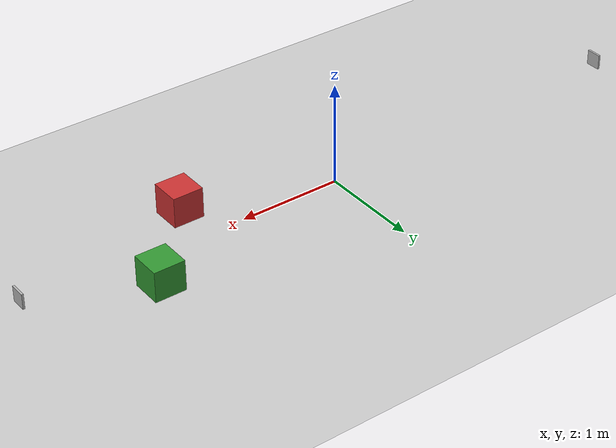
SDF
<?xml version="1.0"?>
<sdf version="1.6">
  <world name="default">

    <include><uri>model://ground_plane</uri></include>
    <include><uri>model://sun</uri></include>

    <!-- right (−y): the car avoids to the left -->
    <model name="obstacle_1">
      <static>true</static>
      <pose>1.4 -0.40 0.15 0 0 0</pose>
      <link name="link">
        <collision name="c"><geometry><box><size>0.3 0.3 0.3</size></box></geometry></collision>
        <visual name="v">
          <geometry><box><size>0.3 0.3 0.3</size></box></geometry>
          <material><ambient>0.8 0.2 0.2 1</ambient><diffuse>0.8 0.2 0.2 1</diffuse></material>
        </visual>
      </link>
    </model>

    <!-- left (+y): the car avoids to the right and returns to the center line -->
    <model name="obstacle_2">
      <static>true</static>
      <pose>2.1 0.40 0.15 0 0 0</pose>
      <link name="link">
        <collision name="c"><geometry><box><size>0.3 0.3 0.3</size></box></geometry></collision>
        <visual name="v">
          <geometry><box><size>0.3 0.3 0.3</size></box></geometry>
          <material><ambient>0.2 0.6 0.2 1</ambient><diffuse>0.2 0.6 0.2 1</diffuse></material>
        </visual>
      </link>
    </model>

    <!-- ── front marker (+X, default yaw=0 → its -X face toward the car) ──────────── -->
    <include>
      <name>aruco_front</name>
      <uri>model://aruco_marker</uri>
      <pose>3.2 0 0.16 0 0 0</pose>
    </include>

    <!-- ── rear marker (-X, yaw=180° → its +X face toward the car after the U-turn) ──── -->
    <include>
      <name>aruco_rear</name>
      <uri>model://aruco_marker</uri>
      <pose>-3.2 0 0.16 0 0 3.14159</pose>
    </include>

  </world>
</sdf>

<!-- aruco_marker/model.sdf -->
<!-- ArUco id=1 texture on a thin panel. The marker is visible on the -X face the camera sees.
     Marker real size 0.15m (matches aruco_detector.MARKER_SIZE_M -> distance estimation is correct). -->
<sdf version="1.6">
  <model name="aruco_marker">
    <static>true</static>
    <link name="link">
      <visual name="marker">
        <geometry>
          <box><size>0.02 0.15 0.15</size></box>
        </geometry>
        <material>
          <script>
            <uri>model://aruco_marker/materials/scripts</uri>
            <uri>model://aruco_marker/materials/textures</uri>
            <name>ArucoMarker/Marker1</name>
          </script>
        </material>
      </visual>
      <collision name="c">
        <geometry>
          <box><size>0.02 0.15 0.15</size></box>
        </geometry>
      </collision>
    </link>
  </model>
</sdf>
